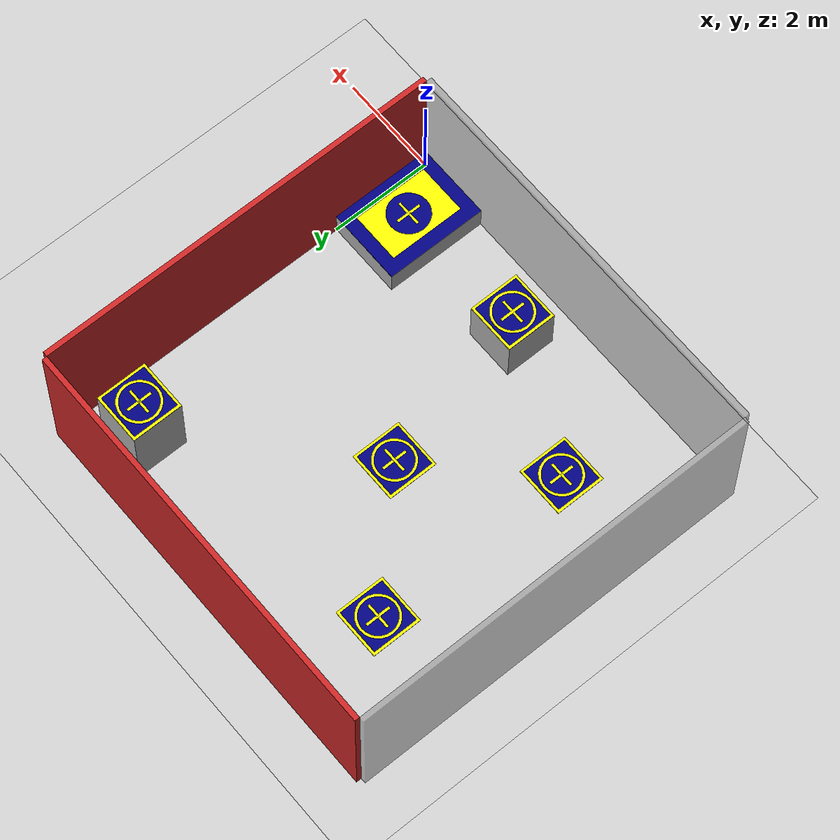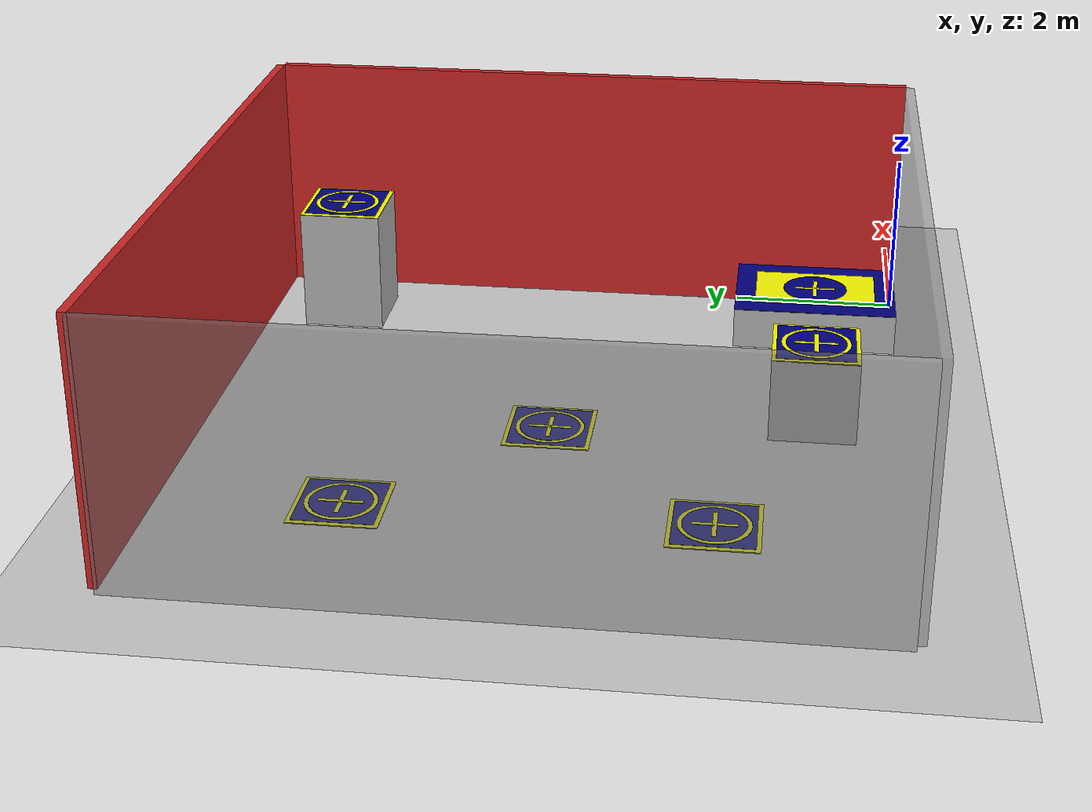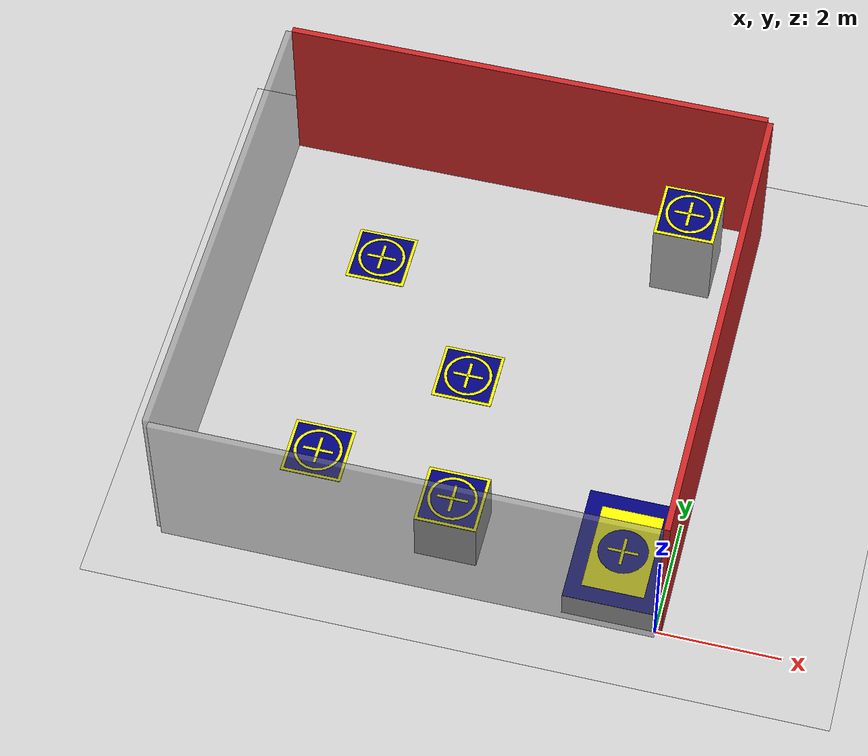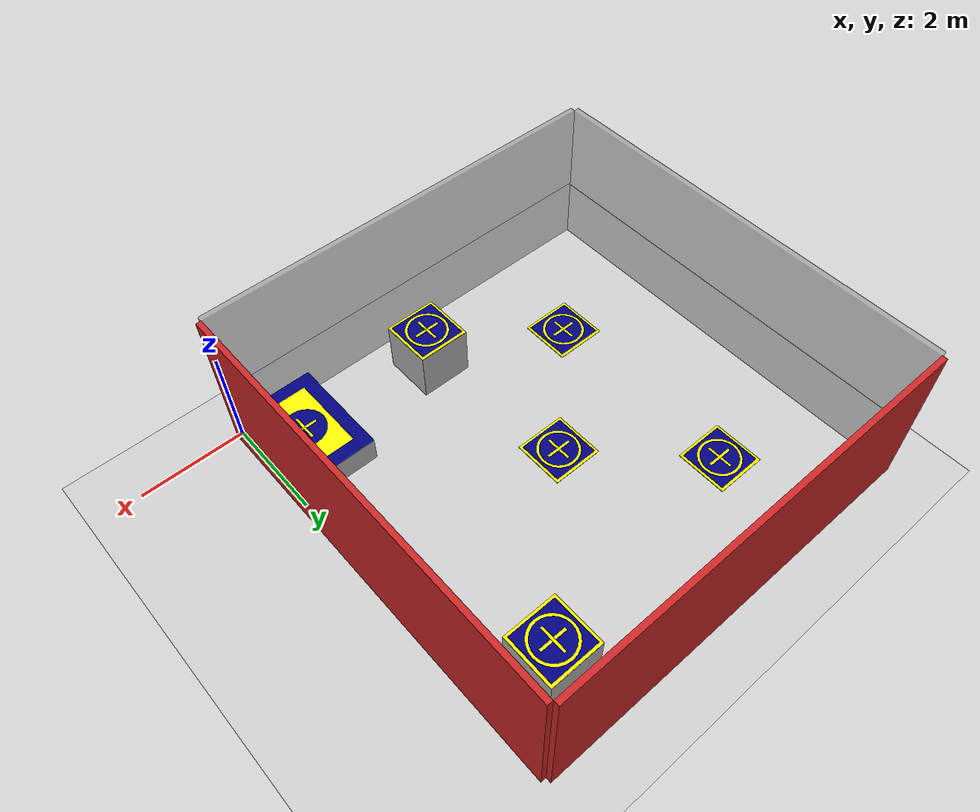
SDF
<sdf version="1.6">
 <world name="arena_FRL">
  <physics type="ode">
   <ode>
    <solver><type>quick</type><iters>100</iters><sor>1.0</sor></solver>
    <constraints>
     <cfm>0.0</cfm>
     <erp>0.2</erp>
     <contact_max_correcting_vel>0.1</contact_max_correcting_vel>
     <contact_surface_layer>0.0</contact_surface_layer>
    </constraints>
   </ode>
   <real_time_update_rate>100</real_time_update_rate>
   <max_step_size>0.0025</max_step_size>
  </physics>
  <model name="wall_1">
   <include><uri>model://parede_translucida</uri><pose>-4 -0.05 1.5 0 0 0</pose></include>
  </model>
  <model name="wall_2">
   <include><uri>model://parede_translucida</uri><pose>-8.05 4 1.5 0 0 1.5708</pose></include>
  </model>
  <model name="wall_3"><include><uri>model://parede_ifsc</uri><pose>-4 8.05 1.5 0 0 0</pose></include></model>
  <model name="wall_4">
   <include><uri>model://parede_ifsc</uri><pose>0.05 4 1.5 0 0 1.5708</pose></include>
  </model>
  <include><uri>model://ground_plane</uri></include>
  <include><uri>model://sun</uri></include>
  <include><uri>model://base_takeoff</uri><pose>-0.75 1 0 0 0 1.57</pose></include>
  <include><uri>model://base_pouso_alt1</uri><pose>-3.5 1 0 0 0 0</pose></include>
  <include><uri>model://base_pouso_alt15</uri><pose>-1 7 0 0 0 0</pose></include>
  <model name="base1"><include><uri>model://base_pouso</uri><pose>-4 4 0 0 0 0</pose></include></model>
  <model name="base2"><include><uri>model://base_pouso</uri><pose>-6 2 0 0 0 0</pose></include></model>
  <model name="base3"><include><uri>model://base_pouso</uri><pose>-6 6 0 0 0 0</pose></include></model>
 </world>
</sdf>

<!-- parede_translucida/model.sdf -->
<sdf version="1.6">

  <!-- Parede Translucida -->
  <model name="wall_50">
    <static>true</static>
    <link name="link_base">
      <collision name="collision">
        <geometry>
          <box>
            <size>8 0.1 3</size>
          </box>
        </geometry>
      </collision>

      <visual name="visual">
        <geometry>
          <box>
            <size>8 0.1 3</size>
          </box>
        </geometry>
        <material>
          <ambient>0.5 0.5 0.5 0.5</ambient>  <!-- Cinza com 50% de transparência -->
          <diffuse>0.5 0.5 0.5 0.5</diffuse>
          <specular>0.2 0.2 0.2 0.5</specular>
        </material>
      </visual>

    </link>
  </model>
</sdf>

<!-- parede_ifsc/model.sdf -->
<sdf version="1.6">

  <!-- Parede com Logo do IFSC -->
  <model name="wall_IFSC">
    <static>true</static>
    <link name="link">
      <collision name="collision">
        <geometry>
          <box>
            <size>8 0.1 3</size>
          </box>
        </geometry>
      </collision>

      <visual name="visual">
        <geometry>
          <box>
            <size>8 0.1 3</size>
          </box>
        </geometry>
        <material>
          <script>
    	    <uri>model://parede_ifsc/materials/scripts</uri>
	    <uri>model://parede_ifsc/materials/textures</uri>
	    <name>parede_material</name>
          </script>
        </material>
      </visual>
    </link>
  </model>
</sdf>

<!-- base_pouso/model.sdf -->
<sdf version="1.6">
  <model name="base_pouso">
    <static>true</static>
    <link name="link_base">

      <!-- Plano de 1x1m (contorno) -->
      <visual name="borda">
        <geometry>
          <box><size>1 1 0.01</size></box>
        </geometry>
        <material>
          <ambient>1 1 0 1</ambient>  <!-- Amarelo -->
          <diffuse>1 1 0 1</diffuse>
        </material>
      </visual>

      <!-- Plano de 1x1m (base) -->
      <visual name="base">
        <pose>0 0 0.012 0 0 0</pose>
        <geometry>
          <box><size>0.9 0.9 0.002</size></box>
        </geometry>
        <material>
          <ambient>0 0 0.5 1</ambient>  <!-- Azul escuro -->
          <diffuse>0 0 0.5 1</diffuse>
        </material>
      </visual>

      <!-- Círculo amarelo (externo: 0.8m de diâmetro) -->
      <visual name="circulo_out">
        <pose>0 0 0.014 0 0 0</pose>
        <geometry>
          <cylinder>
            <radius>0.4</radius>
            <length>0.002</length>
          </cylinder>
        </geometry>
        <material>
          <ambient>1 1 0 1</ambient>  <!-- Amarelo -->
          <diffuse>1 1 0 1</diffuse>
        </material>
      </visual>

      <!-- Círculo azul (interno: 0.7m de diâmetro) -->
      <visual name="circulo_in">
        <pose>0 0 0.016 0 0 0</pose>
        <geometry>
          <cylinder>
            <radius>0.35</radius>
            <length>0.002</length>
          </cylinder>
        </geometry>
        <material>
          <ambient>0 0 0.5 1</ambient>  <!-- Azul escuro -->
          <diffuse>0 0 0.5 1</diffuse>
        </material>
      </visual>

      <!-- Linha horizontal da cruz -->
      <visual name="linha_h">
        <pose>0 0 0.018 0 0 0</pose>
        <geometry>
          <box><size>0.5 0.05 0.002</size></box>
        </geometry>
        <material>
          <ambient>1 1 0 1</ambient>
          <diffuse>1 1 0 1</diffuse>
        </material>
      </visual>

      <!-- Linha vertical da cruz -->
      <visual name="linha_v">
        <pose>0 0 0.018 0 0 0</pose>
        <geometry>
          <box><size>0.05 0.5 0.002</size></box>
        </geometry>
        <material>
          <ambient>1 1 0 1</ambient>
          <diffuse>1 1 0 1</diffuse>
        </material>
      </visual>

    </link>
  </model>
</sdf>

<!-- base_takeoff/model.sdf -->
<!-- Plano de 1x1m (base) -->
<sdf version="1.6">
  <model name="base_takeoff">
    <static>true</static>
    <link name="link_base">
      <collision name="collision">
        <pose>0 0 0.25 0 0 0</pose>
        <geometry>
          <box>
            <size>2 1.5 0.5</size>
          </box>
        </geometry>
      </collision>

      <!-- Base -->
      <visual name="base">
        <pose>0 0 0.25 0 0 0</pose>
        <geometry>
          <box><size>2 1.5 0.5</size></box>
        </geometry>
        <material>
          <ambient>0.7 0.7 0.7 1</ambient>  <!-- Cinza -->
          <diffuse>0.7 0.7 0.7 1</diffuse>
        </material>
      </visual>

      <!-- Plano de 2x1.5m (contorno) -->
      <visual name="retangulo_azul">
        <pose>0 0 0.5 0 0 0</pose>
        <geometry>
          <box><size>2 1.5 0.01</size></box>
        </geometry>
        <material>
          <ambient>0 0 0.5 1</ambient>  <!-- Azul escuro -->
          <diffuse>0 0 0.5 1</diffuse>
        </material>
      </visual>

      <!-- Plano de 1.5x1m (retangulo amarelo) -->
      <visual name="retangulo_amarelo">
        <pose>0 0 0.512 0 0 0</pose>
        <geometry>
          <box><size>1.5 1 0.002</size></box>
        </geometry>
        <material>
          <ambient>1 1 0 1</ambient>  <!-- Amarelo -->
          <diffuse>1 1 0 1</diffuse>
        </material>
      </visual>

      <!-- Círculo azul (0.8m de diâmetro) -->
      <visual name="circulo_in">
        <pose>0 0 0.516 0 0 0</pose>
        <geometry>
          <cylinder>
            <radius>0.4</radius>
            <length>0.002</length>
          </cylinder>
        </geometry>
        <material>
          <ambient>0 0 0.5 1</ambient>  <!-- Azul escuro -->
          <diffuse>0 0 0.5 1</diffuse>
        </material>
      </visual>

      <!-- Linha horizontal da cruz -->
      <visual name="linha_h">
        <pose>0 0 0.518 0 0 0</pose>
        <geometry>
          <box><size>0.5 0.05 0.002</size></box>
        </geometry>
        <material>
          <ambient>1 1 0 1</ambient>
          <diffuse>1 1 0 1</diffuse>
        </material>
      </visual>

      <!-- Linha vertical da cruz -->
      <visual name="linha_v">
        <pose>0 0 0.518 0 0 0</pose>
        <geometry>
          <box><size>0.05 0.5 0.002</size></box>
        </geometry>
        <material>
          <ambient>1 1 0 1</ambient>
          <diffuse>1 1 0 1</diffuse>
        </material>
      </visual>

    </link>
  </model>
</sdf>

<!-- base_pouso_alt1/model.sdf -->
<sdf version="1.6">
  <model name="base_pouso_alt1">
    <static>true</static>
    <link name="link_base">
      <collision name="collision">
        <pose>0 0 0.5 0 0 0</pose>
        <geometry>
          <box>
            <size>1 1 1</size>
          </box>
        </geometry>
      </collision>

      <!-- Base altura 1m -->
      <visual name="base">
        <pose>0 0 0.5 0 0 0</pose>
        <geometry>
          <box><size>1 1 1</size></box>
        </geometry>
        <material>
          <ambient>0.7 0.7 0.7 1</ambient>  <!-- Cinza -->
          <diffuse>0.7 0.7 0.7 1</diffuse>
        </material>
      </visual>

      <!-- Plano de 1x1m (contorno) -->
      <visual name="quadrado_amarelo">
        <pose>0 0 1 0 0 0</pose>
        <geometry>
          <box><size>1 1 0.01</size></box>
        </geometry>
        <material>
          <ambient>1 1 0 1</ambient>  <!-- Amarelo -->
          <diffuse>1 1 0 1</diffuse>
        </material>
      </visual>

      <!-- Plano de 1x1m (base) -->
      <visual name="quadrado_azul">
        <pose>0 0 1.012 0 0 0</pose>
        <geometry>
          <box><size>0.9 0.9 0.002</size></box>
        </geometry>
        <material>
          <ambient>0 0 0.5 1</ambient>  <!-- Azul escuro -->
          <diffuse>0 0 0.5 1</diffuse>
        </material>
      </visual>

      <!-- Círculo amarelo (externo: 0.8m de diâmetro) -->
      <visual name="circulo_out">
        <pose>0 0 1.014 0 0 0</pose>
        <geometry>
          <cylinder>
            <radius>0.4</radius>
            <length>0.002</length>
          </cylinder>
        </geometry>
        <material>
          <ambient>1 1 0 1</ambient>  <!-- Amarelo -->
          <diffuse>1 1 0 1</diffuse>
        </material>
      </visual>

      <!-- Círculo azul (interno: 0.7m de diâmetro) -->
      <visual name="circulo_in">
        <pose>0 0 1.016 0 0 0</pose>
        <geometry>
          <cylinder>
            <radius>0.35</radius>
            <length>0.002</length>
          </cylinder>
        </geometry>
        <material>
          <ambient>0 0 0.5 1</ambient>  <!-- Azul escuro -->
          <diffuse>0 0 0.5 1</diffuse>
        </material>
      </visual>

      <!-- Linha horizontal da cruz -->
      <visual name="linha_h">
        <pose>0 0 1.018 0 0 0</pose>
        <geometry>
          <box><size>0.5 0.05 0.002</size></box>
        </geometry>
        <material>
          <ambient>1 1 0 1</ambient>
          <diffuse>1 1 0 1</diffuse>
        </material>
      </visual>

      <!-- Linha vertical da cruz -->
      <visual name="linha_v">
        <pose>0 0 1.018 0 0 0</pose>
        <geometry>
          <box><size>0.05 0.5 0.002</size></box>
        </geometry>
        <material>
          <ambient>1 1 0 1</ambient>
          <diffuse>1 1 0 1</diffuse>
        </material>
      </visual>

    </link>
  </model>
</sdf>

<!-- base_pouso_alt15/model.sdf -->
<sdf version="1.6">
  <model name="base_pouso_alt1.5">
    <static>true</static>
    <link name="link_base">
      <collision name="collision">
        <pose>0 0 0.75 0 0 0</pose>
        <geometry>
          <box>
            <size>1 1 1.5</size>
          </box>
        </geometry>
      </collision>

      <!-- Base altura 1.5m -->
      <visual name="base">
        <pose>0 0 0.75 0 0 0</pose>
        <geometry>
          <box><size>1 1 1.5</size></box>
        </geometry>
        <material>
          <ambient>0.7 0.7 0.7 1</ambient>  <!-- Cinza -->
          <diffuse>0.7 0.7 0.7 1</diffuse>
        </material>
      </visual>

      <!-- Plano de 1x1m (contorno) -->
      <visual name="quadrado_amarelo">
        <pose>0 0 1.5 0 0 0</pose>
        <geometry>
          <box><size>1 1 0.01</size></box>
        </geometry>
        <material>
          <ambient>1 1 0 1</ambient>  <!-- Amarelo -->
          <diffuse>1 1 0 1</diffuse>
        </material>
      </visual>

      <!-- Plano de 1x1m (base) -->
      <visual name="quadrado_azul">
        <pose>0 0 1.512 0 0 0</pose>
        <geometry>
          <box><size>0.9 0.9 0.002</size></box>
        </geometry>
        <material>
          <ambient>0 0 0.5 1</ambient>  <!-- Azul escuro -->
          <diffuse>0 0 0.5 1</diffuse>
        </material>
      </visual>

      <!-- Círculo amarelo (externo: 0.8m de diâmetro) -->
      <visual name="circulo_out">
        <pose>0 0 1.514 0 0 0</pose>
        <geometry>
          <cylinder>
            <radius>0.4</radius>
            <length>0.002</length>
          </cylinder>
        </geometry>
        <material>
          <ambient>1 1 0 1</ambient>  <!-- Amarelo -->
          <diffuse>1 1 0 1</diffuse>
        </material>
      </visual>

      <!-- Círculo azul (interno: 0.7m de diâmetro) -->
      <visual name="circulo_in">
        <pose>0 0 1.516 0 0 0</pose>
        <geometry>
          <cylinder>
            <radius>0.35</radius>
            <length>0.002</length>
          </cylinder>
        </geometry>
        <material>
          <ambient>0 0 0.5 1</ambient>  <!-- Azul escuro -->
          <diffuse>0 0 0.5 1</diffuse>
        </material>
      </visual>

      <!-- Linha horizontal da cruz -->
      <visual name="linha_h">
        <pose>0 0 1.518 0 0 0</pose>
        <geometry>
          <box><size>0.5 0.05 0.002</size></box>
        </geometry>
        <material>
          <ambient>1 1 0 1</ambient>
          <diffuse>1 1 0 1</diffuse>
        </material>
      </visual>

      <!-- Linha vertical da cruz -->
      <visual name="linha_v">
        <pose>0 0 1.518 0 0 0</pose>
        <geometry>
          <box><size>0.05 0.5 0.002</size></box>
        </geometry>
        <material>
          <ambient>1 1 0 1</ambient>
          <diffuse>1 1 0 1</diffuse>
        </material>
      </visual>

    </link>
  </model>
</sdf>
